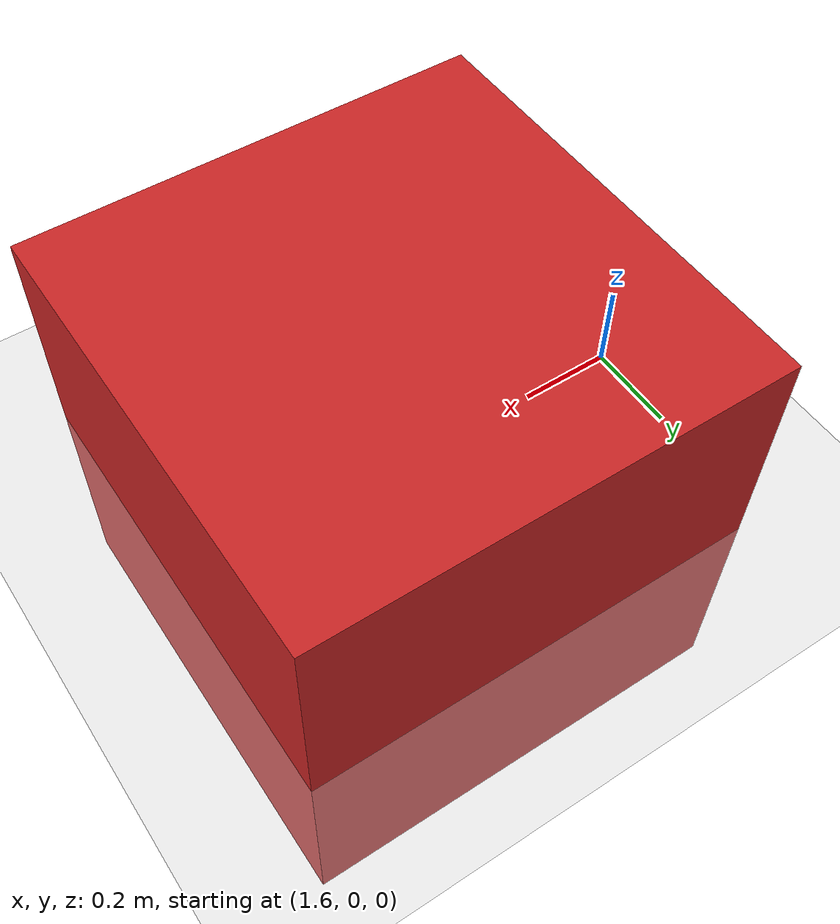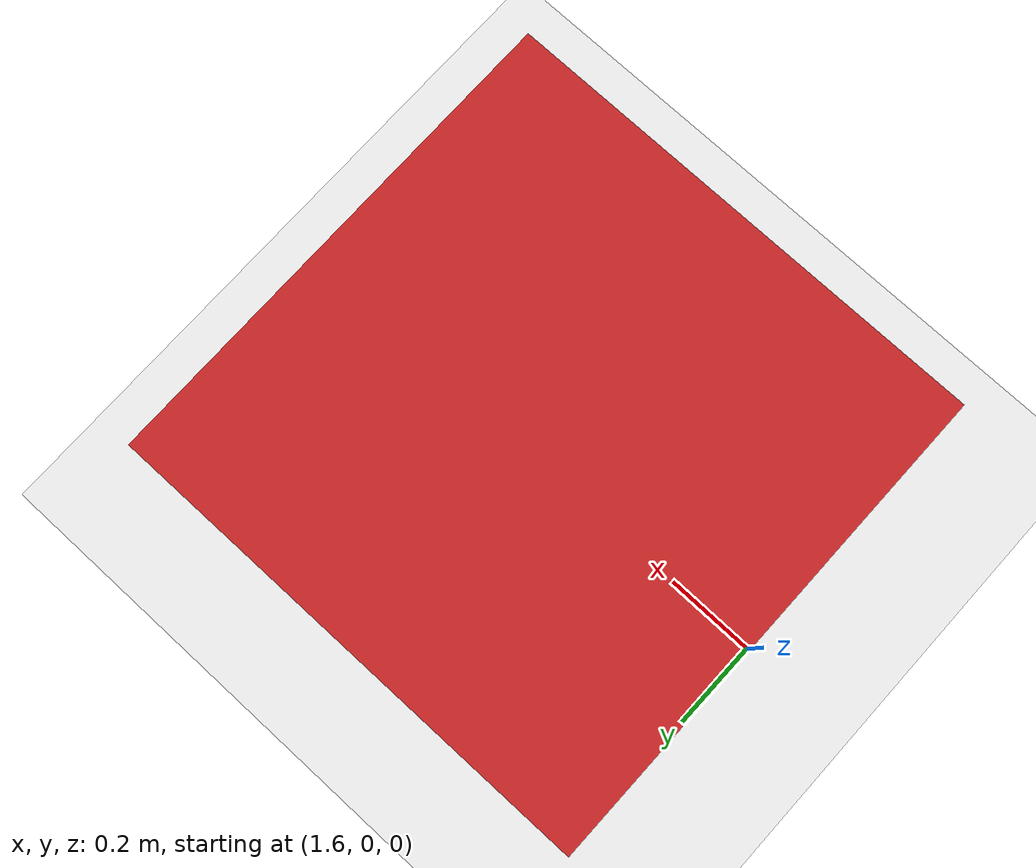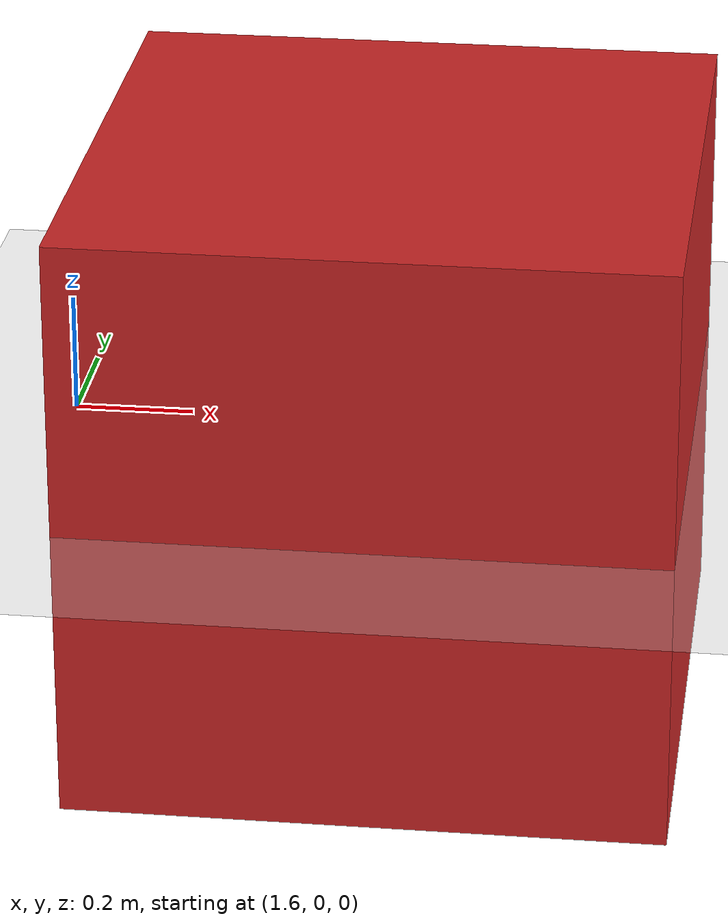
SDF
<sdf version="1.4">
  <world name="default">

    <scene>
      <ambient>0.4 0.4 0.4 1</ambient>
      <background>0.7 0.7 0.7 1</background>
      <shadows>true</shadows>
    </scene>

    <!-- A global light source -->
    <include>
      <uri>model://sun</uri>
    </include>

    <!-- A ground plane -->
    <include>
      <uri>model://ground_plane</uri>
    </include>
    <model name='GreenBox'>
      <link name='link_4'>
        <pose>-0 0 0 0 -0 0</pose>
        <gravity>1</gravity>
        <self_collide>0</self_collide>
        <kinematic>0</kinematic>
        <enable_wind>0</enable_wind>
        <visual name='visual'>
          <pose>0 0 0 0 -0 0</pose>
          <geometry>
            <box>
              <size>1 1 1</size>
            </box>
          </geometry>
          <material>
            <lighting>1</lighting>
            <script>
              <uri>file://media/materials/scripts/gazebo.material</uri>
              <name>Gazebo/Red</name>
            </script>
          </material>
        </visual>
        <collision name='collision'>
          <laser_retro>0</laser_retro>
          <max_contacts>10</max_contacts>
          <pose>0 0 0 0 -0 0</pose>
          <geometry>
            <box>
              <size>1 1 1</size>
            </box>
          </geometry>
        </collision>
      </link>
      <static>0</static>
      <allow_auto_disable>1</allow_auto_disable>
      <pose>2.1495 0 0 0 -0 0</pose>
    </model>
    <physics type="ode">
      <real_time_update_rate>1000.0</real_time_update_rate>
      <max_step_size>0.001</max_step_size>
      <real_time_factor>1</real_time_factor>
      <ode>
        <solver>
          <type>quick</type>
          <iters>150</iters>
          <precon_iters>0</precon_iters>
          <sor>1.400000</sor>
          <use_dynamic_moi_rescaling>1</use_dynamic_moi_rescaling>
        </solver>
        <constraints>
          <cfm>0.00001</cfm>
          <erp>0.2</erp>
          <contact_max_correcting_vel>2000.000000</contact_max_correcting_vel>
          <contact_surface_layer>0.01000</contact_surface_layer>
        </constraints>
      </ode>
    </physics>
  </world>

</sdf>
